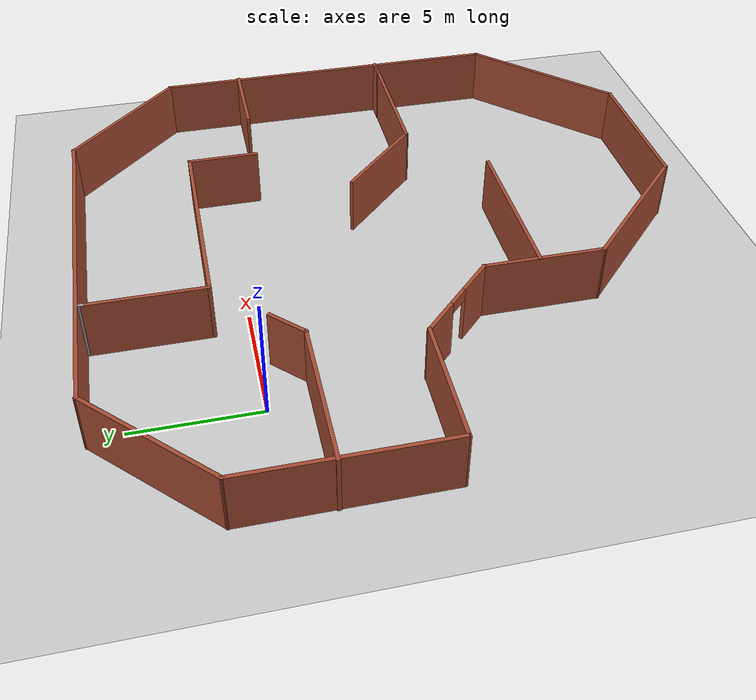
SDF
<sdf version="1.7">
 <world name="default">
  <light name="sun" type="directional">
   <pose>0 0 10 0 -0 0</pose>
   <diffuse>0.8 0.8 0.8 1</diffuse>
   <specular>0.2 0.2 0.2 1</specular>
   <attenuation>
    <range>1000</range>
    <constant>0.9</constant>
    <linear>0.01</linear>
    <quadratic>0.001</quadratic>
   </attenuation>
   <direction>-0.5 0.1 -0.9</direction>
   <spot><inner_angle>0</inner_angle><outer_angle>0</outer_angle><falloff>0</falloff></spot>
  </light>
  <model name="ground_plane">
   <static>1</static>
   <link name="link">
    <collision name="collision">
     <geometry><plane><normal>0 0 1</normal><size>100 100</size></plane></geometry>
     <surface><friction><ode><mu>100</mu><mu2>50</mu2></ode></friction></surface>
    </collision>
    <visual name="visual">
     <cast_shadows>0</cast_shadows>
     <geometry><plane><normal>0 0 1</normal><size>100 100</size></plane></geometry>
     <material>
      <script><uri>file://media/materials/scripts/gazebo.material</uri><name>Gazebo/Grey</name></script>
     </material>
    </visual>
   </link>
  </model>
  <gravity>0 0 -9.8</gravity>
  <magnetic_field>6e-06 2.3e-05 -4.2e-05</magnetic_field>
  <atmosphere type="adiabatic"/>
  <physics type="ode">
   <max_step_size>0.001</max_step_size>
   <real_time_factor>1</real_time_factor>
   <real_time_update_rate>1000</real_time_update_rate>
  </physics>
  <scene><ambient>0.4 0.4 0.4 1</ambient><background>0.7 0.7 0.7 1</background><shadows>1</shadows></scene>
  <audio><device>default</device></audio>
  <spherical_coordinates>
   <surface_model>EARTH_WGS84</surface_model>
   <latitude_deg>0</latitude_deg>
   <longitude_deg>0</longitude_deg>
   <elevation>0</elevation>
   <heading_deg>0</heading_deg>
  </spherical_coordinates>
  <model name="house">
   <pose>7.2239 -6.04526 0 0 -0 0</pose>
   <link name="Wall_0">
    <collision name="Wall_0_Collision">
     <geometry><box><size>8 0.15 2.5</size></box></geometry>
     <pose>0 0 1.25 0 -0 0</pose>
    </collision>
    <visual name="Wall_0_Visual">
     <pose>0 0 1.25 0 -0 0</pose>
     <geometry><box><size>8 0.15 2.5</size></box></geometry>
     <material>
      <script><uri>file://media/materials/scripts/gazebo.material</uri><name>Gazebo/Bricks</name></script>
      <ambient>1 1 1 1</ambient>
     </material>
     <meta><layer>0</layer></meta>
    </visual>
    <pose>-11.8431 4.06694 0 0 -0 1.5708</pose>
   </link>
   <link name="Wall_1">
    <collision name="Wall_1_Collision">
     <geometry><box><size>6.25 0.15 2.5</size></box></geometry>
     <pose>0 0 1.25 0 -0 0</pose>
    </collision>
    <visual name="Wall_1_Visual">
     <pose>0 0 1.25 0 -0 0</pose>
     <geometry><box><size>6.25 0.15 2.5</size></box></geometry>
     <material>
      <script><uri>file://media/materials/scripts/gazebo.material</uri><name>Gazebo/Bricks</name></script>
      <ambient>1 1 1 1</ambient>
     </material>
     <meta><layer>0</layer></meta>
    </visual>
    <pose>-9.6864 10.1486 0 0 -0 0.785398</pose>
   </link>
   <link name="Wall_10">
    <collision name="Wall_10_Collision">
     <geometry><box><size>5.11708 0.15 2.5</size></box></geometry>
     <pose>0 0 1.25 0 -0 0</pose>
    </collision>
    <visual name="Wall_10_Visual">
     <pose>0 0 1.25 0 -0 0</pose>
     <geometry><box><size>5.11708 0.15 2.5</size></box></geometry>
     <material>
      <script><uri>file://media/materials/scripts/gazebo.material</uri><name>Gazebo/Bricks</name></script>
      <ambient>1 1 1 1</ambient>
     </material>
     <meta><layer>0</layer></meta>
    </visual>
    <pose>-9.35959 0.126346 0 0 -0 3.13531</pose>
   </link>
   <link name="Wall_12">
    <collision name="Wall_12_Collision">
     <geometry><box><size>6 0.15 2.5</size></box></geometry>
     <pose>0 0 1.25 0 -0 0</pose>
    </collision>
    <visual name="Wall_12_Visual">
     <pose>0 0 1.25 0 -0 0</pose>
     <geometry><box><size>6 0.15 2.5</size></box></geometry>
     <material>
      <script><uri>file://media/materials/scripts/gazebo.material</uri><name>Gazebo/Bricks</name></script>
      <ambient>1 1 1 1</ambient>
     </material>
     <meta><layer>0</layer></meta>
    </visual>
    <pose>-8.96253 4.38657 0 0 -0 0</pose>
   </link>
   <link name="Wall_14">
    <collision name="Wall_14_Collision">
     <geometry><box><size>4.75 0.15 2.5</size></box></geometry>
     <pose>0 0 1.25 0 -0 0</pose>
    </collision>
    <visual name="Wall_14_Visual">
     <pose>0 0 1.25 0 -0 0</pose>
     <geometry><box><size>4.75 0.15 2.5</size></box></geometry>
     <material>
      <script><uri>file://media/materials/scripts/gazebo.material</uri><name>Gazebo/Bricks</name></script>
      <ambient>1 1 1 1</ambient>
     </material>
     <meta><layer>0</layer></meta>
    </visual>
    <pose>-2.96161 9.76248 0 0 -0 1.5708</pose>
   </link>
   <link name="Wall_15">
    <collision name="Wall_15_Collision">
     <geometry><box><size>0.25 0.15 2.5</size></box></geometry>
     <pose>0 0 1.25 0 -0 0</pose>
    </collision>
    <visual name="Wall_15_Visual">
     <pose>0 0 1.25 0 -0 0</pose>
     <geometry><box><size>0.25 0.15 2.5</size></box></geometry>
     <material>
      <script><uri>file://media/materials/scripts/gazebo.material</uri><name>Gazebo/Grey</name></script>
      <ambient>1 1 1 1</ambient>
     </material>
     <meta><layer>0</layer></meta>
    </visual>
    <pose>-2.96161 12.1125 0 0 -0 1.5708</pose>
   </link>
   <link name="Wall_17">
    <collision name="Wall_17_Collision">
     <geometry><box><size>8.5 0.15 2.5</size></box></geometry>
     <pose>0 0 1.25 0 -0 0</pose>
    </collision>
    <visual name="Wall_17_Visual">
     <pose>0 0 1.25 0 -0 0</pose>
     <geometry><box><size>8.5 0.15 2.5</size></box></geometry>
     <material>
      <script><uri>file://media/materials/scripts/gazebo.material</uri><name>Gazebo/Bricks</name></script>
      <ambient>1 1 1 1</ambient>
     </material>
     <meta><layer>0</layer></meta>
    </visual>
    <pose>1.21339 7.46248 0 0 -0 0</pose>
   </link>
   <link name="Wall_19">
    <collision name="Wall_19_Collision">
     <geometry><box><size>3.75 0.15 2.5</size></box></geometry>
     <pose>0 0 1.25 0 -0 0</pose>
    </collision>
    <visual name="Wall_19_Visual">
     <pose>0 0 1.25 0 -0 0</pose>
     <geometry><box><size>3.75 0.15 2.5</size></box></geometry>
     <material>
      <script><uri>file://media/materials/scripts/gazebo.material</uri><name>Gazebo/Bricks</name></script>
      <ambient>1 1 1 1</ambient>
     </material>
     <meta><layer>0</layer></meta>
    </visual>
    <pose>10.0875 4.56334 0 0 -0 0</pose>
   </link>
   <link name="Wall_2">
    <collision name="Wall_2_Collision">
     <geometry><box><size>15 0.15 2.5</size></box></geometry>
     <pose>0 0 1.25 0 -0 0</pose>
    </collision>
    <visual name="Wall_2_Visual">
     <pose>0 0 1.25 0 -0 0</pose>
     <geometry><box><size>15 0.15 2.5</size></box></geometry>
     <material>
      <script><uri>file://media/materials/scripts/gazebo.material</uri><name>Gazebo/Bricks</name></script>
      <ambient>1 1 1 1</ambient>
     </material>
     <meta><layer>0</layer></meta>
    </visual>
    <pose>-0.104724 12.3053 0 0 -0 0</pose>
   </link>
   <link name="Wall_21">
    <collision name="Wall_21_Collision">
     <geometry><box><size>6.75 0.15 2.5</size></box></geometry>
     <pose>0 0 1.25 0 -0 0</pose>
    </collision>
    <visual name="Wall_21_Visual">
     <pose>0 0 1.25 0 -0 0</pose>
     <geometry><box><size>6.75 0.15 2.5</size></box></geometry>
     <material>
      <script><uri>file://media/materials/scripts/gazebo.material</uri><name>Gazebo/Bricks</name></script>
      <ambient>1 1 1 1</ambient>
     </material>
     <meta><layer>0</layer></meta>
    </visual>
    <pose>-0.671666 -5.02635 0 0 -0 0</pose>
   </link>
   <link name="Wall_23">
    <collision name="Wall_23_Collision">
     <geometry><box><size>6.25 0.15 2.5</size></box></geometry>
     <pose>0 0 1.25 0 -0 0</pose>
    </collision>
    <visual name="Wall_23_Visual">
     <pose>0 0 1.25 0 -0 0</pose>
     <geometry><box><size>6.25 0.15 2.5</size></box></geometry>
     <material>
      <script><uri>file://media/materials/scripts/gazebo.material</uri><name>Gazebo/Bricks</name></script>
      <ambient>1 1 1 1</ambient>
     </material>
     <meta><layer>0</layer></meta>
    </visual>
    <pose>8.57747 -2.12722 0 0 -0 0</pose>
   </link>
   <link name="Wall_24">
    <collision name="Wall_24_Collision">
     <geometry><box><size>0.15 0.15 2.5</size></box></geometry>
     <pose>0 0 1.25 0 -0 0</pose>
    </collision>
    <visual name="Wall_24_Visual">
     <pose>0 0 1.25 0 -0 0</pose>
     <geometry><box><size>0.15 0.15 2.5</size></box></geometry>
     <material>
      <script><uri>file://media/materials/scripts/gazebo.material</uri><name>Gazebo/Grey</name></script>
      <ambient>1 1 1 1</ambient>
     </material>
     <meta><layer>0</layer></meta>
    </visual>
    <pose>11.6275 -2.12722 0 0 -0 0</pose>
   </link>
   <link name="Wall_27">
    <collision name="Wall_27_Collision">
     <geometry><box><size>1 0.15 2.5</size></box></geometry>
     <pose>0 0 1.25 0 -0 0</pose>
    </collision>
    <visual name="Wall_27_Visual">
     <pose>0 0 1.25 0 -0 0</pose>
     <geometry><box><size>1 0.15 2.5</size></box></geometry>
     <material>
      <script><uri>file://media/materials/scripts/gazebo.material</uri><name>Gazebo/Bricks</name></script>
      <ambient>1 1 1 1</ambient>
     </material>
     <meta><layer>0</layer></meta>
    </visual>
    <pose>11.4488 -2.11111 0 0 -0 0</pose>
   </link>
   <link name="Wall_29">
    <collision name="Wall_29_Collision">
     <geometry><box><size>4.5 0.15 2.5</size></box></geometry>
     <pose>0 0 1.25 0 -0 0</pose>
    </collision>
    <visual name="Wall_29_Visual">
     <pose>0 0 1.25 0 -0 0</pose>
     <geometry><box><size>4.5 0.15 2.5</size></box></geometry>
     <material>
      <script><uri>file://media/materials/scripts/gazebo.material</uri><name>Gazebo/Bricks</name></script>
      <ambient>1 1 1 1</ambient>
     </material>
     <meta><layer>0</layer></meta>
    </visual>
    <pose>3.98951 -0.589259 0 0 -0 2.35619</pose>
   </link>
   <link name="Wall_3">
    <collision name="Wall_3_Collision">
     <geometry><box><size>6.5 0.15 2.5</size></box></geometry>
     <pose>0 0 1.25 0 -0 0</pose>
    </collision>
    <visual name="Wall_3_Visual">
     <pose>0 0 1.25 0 -0 0</pose>
     <geometry><box><size>6.5 0.15 2.5</size></box></geometry>
     <material>
      <script><uri>file://media/materials/scripts/gazebo.material</uri><name>Gazebo/Bricks</name></script>
      <ambient>1 1 1 1</ambient>
     </material>
     <meta><layer>0</layer></meta>
    </visual>
    <pose>9.56534 10.0602 0 0 -0 -0.785398</pose>
   </link>
   <link name="Wall_31">
    <collision name="Wall_31_Collision">
     <geometry><box><size>1.75 0.15 2.5</size></box></geometry>
     <pose>0 0 1.25 0 -0 0</pose>
    </collision>
    <visual name="Wall_31_Visual">
     <pose>0 0 1.25 0 -0 0</pose>
     <geometry><box><size>1.75 0.15 2.5</size></box></geometry>
     <material>
      <script><uri>file://media/materials/scripts/gazebo.material</uri><name>Gazebo/Bricks</name></script>
      <ambient>1 1 1 1</ambient>
     </material>
     <meta><layer>0</layer></meta>
    </visual>
    <pose>-5.47184 4.95225 0 0 -0 0.785398</pose>
   </link>
   <link name="Wall_33">
    <collision name="Wall_33_Collision">
     <geometry><box><size>3 0.15 2.5</size></box></geometry>
     <pose>0 0 1.25 0 -0 0</pose>
    </collision>
    <visual name="Wall_33_Visual">
     <pose>0 0 1.25 0 -0 0</pose>
     <geometry><box><size>3 0.15 2.5</size></box></geometry>
     <material>
      <script><uri>file://media/materials/scripts/gazebo.material</uri><name>Gazebo/Bricks</name></script>
      <ambient>1 1 1 1</ambient>
     </material>
     <meta><layer>0</layer></meta>
    </visual>
    <pose>5.38839 6.03748 0 0 -0 -1.5708</pose>
   </link>
   <link name="Wall_4">
    <collision name="Wall_4_Collision">
     <geometry><box><size>15.25 0.15 2.5</size></box></geometry>
     <pose>0 0 1.25 0 -0 0</pose>
    </collision>
    <visual name="Wall_4_Visual">
     <pose>0 0 1.25 0 -0 0</pose>
     <geometry><box><size>15.25 0.15 2.5</size></box></geometry>
     <material>
      <script><uri>file://media/materials/scripts/gazebo.material</uri><name>Gazebo/Bricks</name></script>
      <ambient>1 1 1 1</ambient>
     </material>
     <meta><layer>0</layer></meta>
    </visual>
    <pose>11.8104 0.265165 0 0 -0 -1.5708</pose>
   </link>
   <link name="Wall_5">
    <collision name="Wall_5_Collision">
     <geometry><box><size>7.25 0.15 2.5</size></box></geometry>
     <pose>0 0 1.25 0 -0 0</pose>
    </collision>
    <visual name="Wall_5_Visual">
     <pose>0 0 1.25 0 -0 0</pose>
     <geometry><box><size>7.25 0.15 2.5</size></box></geometry>
     <material>
      <script><uri>file://media/materials/scripts/gazebo.material</uri><name>Gazebo/Bricks</name></script>
      <ambient>1 1 1 1</ambient>
     </material>
     <meta><layer>0</layer></meta>
    </visual>
    <pose>9.30017 -9.79506 0 0 -0 -2.35619</pose>
   </link>
   <link name="Wall_6">
    <collision name="Wall_6_Collision">
     <geometry><box><size>6.25 0.15 2.5</size></box></geometry>
     <pose>0 0 1.25 0 -0 0</pose>
    </collision>
    <visual name="Wall_6_Visual">
     <pose>0 0 1.25 0 -0 0</pose>
     <geometry><box><size>6.25 0.15 2.5</size></box></geometry>
     <material>
      <script><uri>file://media/materials/scripts/gazebo.material</uri><name>Gazebo/Bricks</name></script>
      <ambient>1 1 1 1</ambient>
     </material>
     <meta><layer>0</layer></meta>
    </visual>
    <pose>3.73995 -12.3053 0 0 -0 3.14159</pose>
   </link>
   <link name="Wall_7">
    <collision name="Wall_7_Collision">
     <geometry><box><size>6.75 0.15 2.5</size></box></geometry>
     <pose>0 0 1.25 0 -0 0</pose>
    </collision>
    <visual name="Wall_7_Visual">
     <pose>0 0 1.25 0 -0 0</pose>
     <geometry><box><size>6.75 0.15 2.5</size></box></geometry>
     <material>
      <script><uri>file://media/materials/scripts/gazebo.material</uri><name>Gazebo/Bricks</name></script>
      <ambient>1 1 1 1</ambient>
     </material>
     <meta><layer>0</layer></meta>
    </visual>
    <pose>-1.64351 -9.97184 0 0 -0 2.35619</pose>
   </link>
   <link name="Wall_8">
    <collision name="Wall_8_Collision">
     <geometry><box><size>5 0.15 2.5</size></box></geometry>
     <pose>0 0 1.25 0 -0 0</pose>
    </collision>
    <visual name="Wall_8_Visual">
     <pose>0 0 1.25 0 -0 0</pose>
     <geometry><box><size>5 0.15 2.5</size></box></geometry>
     <material>
      <script><uri>file://media/materials/scripts/gazebo.material</uri><name>Gazebo/Bricks</name></script>
      <ambient>1 1 1 1</ambient>
     </material>
     <meta><layer>0</layer></meta>
    </visual>
    <pose>-3.97696 -5.21339 0 0 -0 1.5708</pose>
   </link>
   <link name="Wall_9">
    <pose>-5.42653 -1.33882 0 0 -0 2.35619</pose>
    <visual name="Wall_9_Visual_0">
     <pose>-1.29853 0 1.25 0 -0 0</pose>
     <geometry><box><size>1.65294 0.15 2.5</size></box></geometry>
     <material>
      <script><uri>file://media/materials/scripts/gazebo.material</uri><name>Gazebo/Bricks</name></script>
      <ambient>1 1 1 1</ambient>
     </material>
     <meta><layer>0</layer></meta>
    </visual>
    <collision name="Wall_9_Collision_0">
     <geometry><box><size>1.65294 0.15 2.5</size></box></geometry>
     <pose>-1.29853 0 1.25 0 -0 0</pose>
    </collision>
    <visual name="Wall_9_Visual_1">
     <pose>1.27647 0 1.25 0 -0 0</pose>
     <geometry><box><size>1.69706 0.15 2.5</size></box></geometry>
     <material>
      <script><uri>file://media/materials/scripts/gazebo.material</uri><name>Gazebo/Bricks</name></script>
      <ambient>1 1 1 1</ambient>
     </material>
     <meta><layer>0</layer></meta>
    </visual>
    <collision name="Wall_9_Collision_1">
     <geometry><box><size>1.69706 0.15 2.5</size></box></geometry>
     <pose>1.27647 0 1.25 0 -0 0</pose>
    </collision>
    <visual name="Wall_9_Visual_2">
     <pose>-0.022063 0 2.25 0 -0 0</pose>
     <geometry><box><size>0.9 0.15 0.5</size></box></geometry>
     <material>
      <script><uri>file://media/materials/scripts/gazebo.material</uri><name>Gazebo/Bricks</name></script>
      <ambient>1 1 1 1</ambient>
     </material>
     <meta><layer>0</layer></meta>
    </visual>
    <collision name="Wall_9_Collision_2">
     <geometry><box><size>0.9 0.15 0.5</size></box></geometry>
     <pose>-0.022063 0 2.25 0 -0 0</pose>
    </collision>
   </link>
   <static>1</static>
  </model>
 </world>
</sdf>
